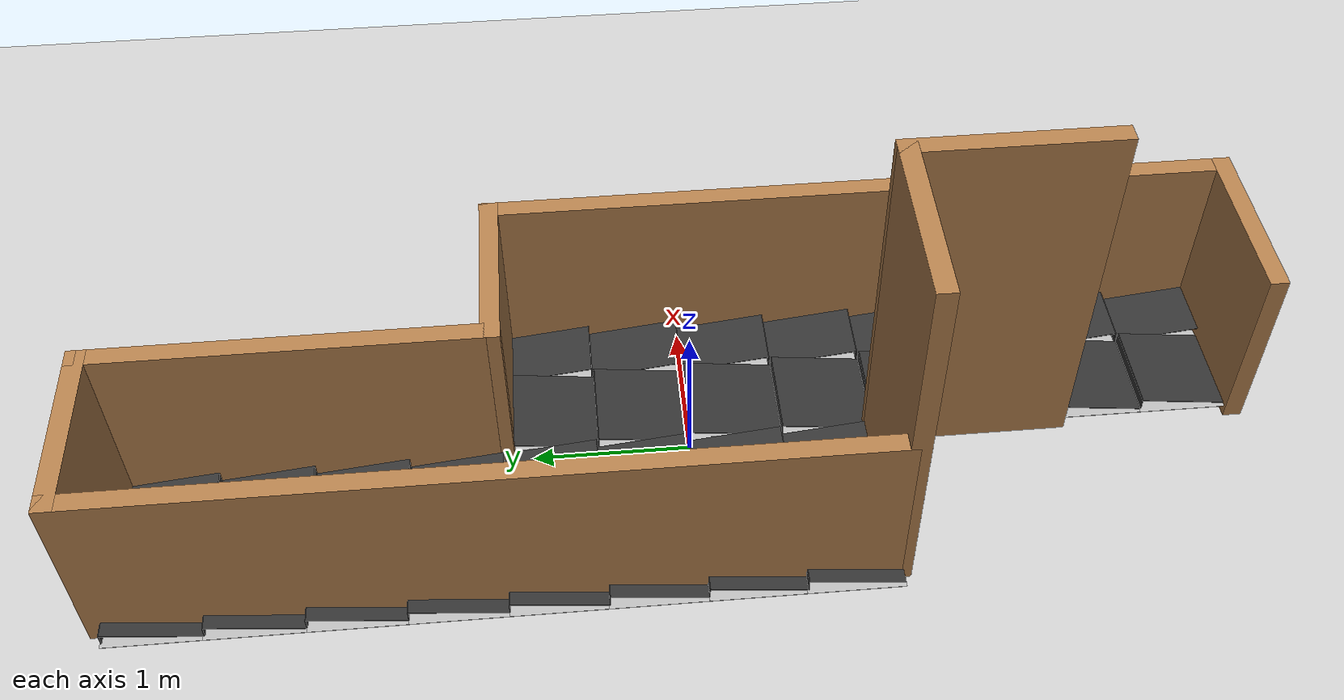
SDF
<sdf version="1.6">
 <world name="default">
  <light name="sun" type="directional">
   <pose>0 0 10 0 -0 0</pose>
   <diffuse>0.8 0.8 0.8 1</diffuse>
   <specular>0.2 0.2 0.2 1</specular>
   <attenuation>
    <range>1000</range>
    <constant>0.9</constant>
    <linear>0.01</linear>
    <quadratic>0.001</quadratic>
   </attenuation>
   <direction>-0.5 0.1 -0.9</direction>
  </light>
  <model name="ground_plane">
   <static>1</static>
   <link name="link">
    <collision name="collision">
     <geometry><plane><normal>0 0 1</normal><size>100 100</size></plane></geometry>
     <surface>
      <contact><collide_bitmask>65535</collide_bitmask></contact>
      <friction><ode><mu>100</mu><mu2>50</mu2></ode></friction>
     </surface>
    </collision>
    <visual name="visual">
     <cast_shadows>0</cast_shadows>
     <geometry><plane><normal>0 0 1</normal><size>100 100</size></plane></geometry>
     <material>
      <script><uri>file://media/materials/scripts/gazebo.material</uri><name>Gazebo/Grey</name></script>
     </material>
    </visual>
   </link>
  </model>
  <gravity>0 0 -9.8</gravity>
  <magnetic_field>6e-06 2.3e-05 -4.2e-05</magnetic_field>
  <atmosphere type="adiabatic"/>
  <physics name="default_physics" default="0" type="ode">
   <max_step_size>0.001</max_step_size>
   <real_time_factor>1</real_time_factor>
   <real_time_update_rate>1000</real_time_update_rate>
  </physics>
  <scene><ambient>0.4 0.4 0.4 1</ambient><background>0.7 0.7 0.7 1</background><shadows>1</shadows></scene>
  <audio><device>default</device></audio>
  <spherical_coordinates>
   <surface_model>EARTH_WGS84</surface_model>
   <latitude_deg>0</latitude_deg>
   <longitude_deg>0</longitude_deg>
   <elevation>0</elevation>
   <heading_deg>0</heading_deg>
  </spherical_coordinates>
  <model name="high_containment_walls">
   <pose>0 0 0 0 0 -1.57</pose>
   <link name="Wall_1">
    <collision name="Wall_1_Collision">
     <geometry><box><size>1.17301 0.12 1.2</size></box></geometry>
     <pose>0 0 0.6 0 -0 0</pose>
    </collision>
    <visual name="Wall_1_Visual">
     <pose>0 0 0.6 0 -0 0</pose>
     <geometry><box><size>1.17301 0.12 1.2</size></box></geometry>
     <material>
      <script><uri>file://media/materials/scripts/gazebo.material</uri><name>Gazebo/Wood</name></script>
      <ambient>1 1 1 1</ambient>
     </material>
     <meta><layer>0</layer></meta>
    </visual>
    <pose>3.56858 0.541186 0 0 -0 1.5708</pose>
   </link>
   <link name="Wall_2">
    <collision name="Wall_2_Collision">
     <geometry><box><size>4.8647 0.12 1.2</size></box></geometry>
     <pose>0 0 0.6 0 -0 0</pose>
    </collision>
    <visual name="Wall_2_Visual">
     <pose>0 0 0.6 0 -0 0</pose>
     <geometry><box><size>4.8647 0.12 1.2</size></box></geometry>
     <material>
      <script><uri>file://media/materials/scripts/gazebo.material</uri><name>Gazebo/Wood</name></script>
      <ambient>1 1 1 1</ambient>
     </material>
     <meta><layer>0</layer></meta>
    </visual>
    <pose>1.19608 1.06769 0 0 -0 3.14159</pose>
   </link>
   <link name="Wall_3">
    <collision name="Wall_3_Collision">
     <geometry><box><size>1.18014 0.12 1.2</size></box></geometry>
     <pose>0 0 0.6 0 -0 0</pose>
    </collision>
    <visual name="Wall_3_Visual">
     <pose>0 0 0.6 0 -0 0</pose>
     <geometry><box><size>1.18014 0.12 1.2</size></box></geometry>
     <material>
      <script><uri>file://media/materials/scripts/gazebo.material</uri><name>Gazebo/Wood</name></script>
      <ambient>1 1 1 1</ambient>
     </material>
     <meta><layer>0</layer></meta>
    </visual>
    <pose>-1.17792 0.537686 0 0 -0 -1.57363</pose>
   </link>
   <link name="Wall_4">
    <collision name="Wall_4_Collision">
     <geometry><box><size>2.50927 0.12 1.2</size></box></geometry>
     <pose>0 0 0.6 0 -0 0</pose>
    </collision>
    <visual name="Wall_4_Visual">
     <pose>0 0 0.6 0 -0 0</pose>
     <geometry><box><size>2.50927 0.12 1.2</size></box></geometry>
     <material>
      <script><uri>file://media/materials/scripts/gazebo.material</uri><name>Gazebo/Wood</name></script>
      <ambient>1 1 1 1</ambient>
     </material>
     <meta><layer>0</layer></meta>
    </visual>
    <pose>-2.37392 0.007186 0 0 -0 -3.14117</pose>
   </link>
   <link name="Wall_5">
    <collision name="Wall_5_Collision">
     <geometry><box><size>1.18871 0.12 1.2</size></box></geometry>
     <pose>0 0 0.6 0 -0 0</pose>
    </collision>
    <visual name="Wall_5_Visual">
     <pose>0 0 0.6 0 -0 0</pose>
     <geometry><box><size>1.18871 0.12 1.2</size></box></geometry>
     <material>
      <script><uri>file://media/materials/scripts/gazebo.material</uri><name>Gazebo/Wood</name></script>
      <ambient>1 1 1 1</ambient>
     </material>
     <meta><layer>0</layer></meta>
    </visual>
    <pose>-3.56842 -0.527814 0 0 -0 -1.5708</pose>
   </link>
   <link name="Wall_6">
    <collision name="Wall_6_Collision">
     <geometry><box><size>4.8628 0.12 1.2</size></box></geometry>
     <pose>0 0 0.6 0 -0 0</pose>
    </collision>
    <visual name="Wall_6_Visual">
     <pose>0 0 0.6 0 -0 0</pose>
     <geometry><box><size>4.8628 0.12 1.2</size></box></geometry>
     <material>
      <script><uri>file://media/materials/scripts/gazebo.material</uri><name>Gazebo/Wood</name></script>
      <ambient>1 1 1 1</ambient>
     </material>
     <meta><layer>0</layer></meta>
    </visual>
    <pose>-1.19692 -1.06481 0 0 -0 -0.001054</pose>
   </link>
   <link name="Wall_8">
    <collision name="Wall_8_Collision">
     <geometry><box><size>1.315 0.12 2.4</size></box></geometry>
     <pose>0 0 1.2 0 -0 0</pose>
    </collision>
    <visual name="Wall_8_Visual">
     <pose>0 0 1.2 0 -0 0</pose>
     <geometry><box><size>1.315 0.12 2.4</size></box></geometry>
     <material>
      <script><uri>file://media/materials/scripts/gazebo.material</uri><name>Gazebo/Wood</name></script>
      <ambient>1 1 1 1</ambient>
     </material>
     <meta><layer>0</layer></meta>
    </visual>
    <pose>1.78308 0.010686 0 0 -0 3.14159</pose>
   </link>
   <link name="Wall_9">
    <collision name="Wall_9_Collision">
     <geometry><box><size>1.19806 0.12 2.4</size></box></geometry>
     <pose>0 0 1.2 0 -0 0</pose>
    </collision>
    <visual name="Wall_9_Visual">
     <pose>0 0 1.2 0 -0 0</pose>
     <geometry><box><size>1.19806 0.12 2.4</size></box></geometry>
     <material>
      <script><uri>file://media/materials/scripts/gazebo.material</uri><name>Gazebo/Wood</name></script>
      <ambient>1 1 1 1</ambient>
     </material>
     <meta><layer>0</layer></meta>
    </visual>
    <pose>1.18008 -0.528314 0 0 -0 -1.581</pose>
   </link>
   <static>1</static>
  </model>
  <model name="frc2016_ramparts">
   <static>1</static>
   <link name="link">
    <visual name="platform">
     <pose>0 0 0.06967 0 -0 0</pose>
     <geometry><box><size>1.27 0.5969 0.003175</size></box></geometry>
    </visual>
    <collision name="platform">
     <pose>0 0 0.06967 0 -0 0</pose>
     <geometry><box><size>1.27 0.5969 0.003175</size></box></geometry>
    </collision>
    <visual name="ramp1">
     <pose>0.30472 0.00588 0.1109 -0.13 0 0</pose>
     <geometry><box><size>0.60957 0.588891 0.00462</size></box></geometry>
     <material><ambient>0.2 0.2 0.2 1</ambient><diffuse>0.2 0.2 0.2 1</diffuse></material>
    </visual>
    <collision name="ramp1">
     <pose>0.30472 0.00588 0.1109 -0.13 0 0</pose>
     <geometry><box><size>0.60957 0.588891 0.00462</size></box></geometry>
    </collision>
    <visual name="up1">
     <pose>0.30472 -0.28806 0.11072 0 -0 0</pose>
     <geometry><box><size>0.60957 0.00462 0.07872</size></box></geometry>
     <material><ambient>0.2 0.2 0.2 1</ambient><diffuse>0.2 0.2 0.2 1</diffuse></material>
    </visual>
    <collision name="up1">
     <pose>0.30472 -0.28806 0.11072 0 -0 0</pose>
     <geometry><box><size>0.60957 0.00462 0.07872</size></box></geometry>
    </collision>
    <visual name="ramp2">
     <pose>-0.30472 -0.00619 0.1109 0.13 -0 0</pose>
     <geometry><box><size>0.60957 0.588891 0.00462</size></box></geometry>
     <material><ambient>0.2 0.2 0.2 1</ambient><diffuse>0.2 0.2 0.2 1</diffuse></material>
    </visual>
    <collision name="ramp2">
     <pose>-0.30472 -0.00619 0.1109 0.13 -0 0</pose>
     <geometry><box><size>0.60957 0.588891 0.00462</size></box></geometry>
    </collision>
    <visual name="up2">
     <pose>-0.30472 0.28806 0.11072 0 -0 0</pose>
     <geometry><box><size>0.60957 0.00462 0.07872</size></box></geometry>
     <material><ambient>0.2 0.2 0.2 1</ambient><diffuse>0.2 0.2 0.2 1</diffuse></material>
    </visual>
    <collision name="up2">
     <pose>-0.30472 0.28806 0.11072 0 -0 0</pose>
     <geometry><box><size>0.60957 0.00462 0.07872</size></box></geometry>
    </collision>
   </link>
   <pose>0.61 -0.295 0 0 -0 0</pose>
  </model>
  <model name="frc2016_ramparts_0">
   <static>1</static>
   <link name="link">
    <visual name="platform">
     <pose>0 0 0.06967 0 -0 0</pose>
     <geometry><box><size>1.27 0.5969 0.003175</size></box></geometry>
    </visual>
    <collision name="platform">
     <pose>0 0 0.06967 0 -0 0</pose>
     <geometry><box><size>1.27 0.5969 0.003175</size></box></geometry>
    </collision>
    <visual name="ramp1">
     <pose>0.30472 0.00588 0.1109 -0.13 0 0</pose>
     <geometry><box><size>0.60957 0.588891 0.00462</size></box></geometry>
     <material><ambient>0.2 0.2 0.2 1</ambient><diffuse>0.2 0.2 0.2 1</diffuse></material>
    </visual>
    <collision name="ramp1">
     <pose>0.30472 0.00588 0.1109 -0.13 0 0</pose>
     <geometry><box><size>0.60957 0.588891 0.00462</size></box></geometry>
    </collision>
    <visual name="up1">
     <pose>0.30472 -0.28806 0.11072 0 -0 0</pose>
     <geometry><box><size>0.60957 0.00462 0.07872</size></box></geometry>
     <material><ambient>0.2 0.2 0.2 1</ambient><diffuse>0.2 0.2 0.2 1</diffuse></material>
    </visual>
    <collision name="up1">
     <pose>0.30472 -0.28806 0.11072 0 -0 0</pose>
     <geometry><box><size>0.60957 0.00462 0.07872</size></box></geometry>
    </collision>
    <visual name="ramp2">
     <pose>-0.30472 -0.00619 0.1109 0.13 -0 0</pose>
     <geometry><box><size>0.60957 0.588891 0.00462</size></box></geometry>
     <material><ambient>0.2 0.2 0.2 1</ambient><diffuse>0.2 0.2 0.2 1</diffuse></material>
    </visual>
    <collision name="ramp2">
     <pose>-0.30472 -0.00619 0.1109 0.13 -0 0</pose>
     <geometry><box><size>0.60957 0.588891 0.00462</size></box></geometry>
    </collision>
    <visual name="up2">
     <pose>-0.30472 0.28806 0.11072 0 -0 0</pose>
     <geometry><box><size>0.60957 0.00462 0.07872</size></box></geometry>
     <material><ambient>0.2 0.2 0.2 1</ambient><diffuse>0.2 0.2 0.2 1</diffuse></material>
    </visual>
    <collision name="up2">
     <pose>-0.30472 0.28806 0.11072 0 -0 0</pose>
     <geometry><box><size>0.60957 0.00462 0.07872</size></box></geometry>
    </collision>
   </link>
   <pose>-0.61 -0.295 0 0 -0 0</pose>
  </model>
  <model name="frc2016_ramparts_1">
   <static>1</static>
   <link name="link">
    <visual name="platform">
     <pose>0 0 0.06967 0 -0 0</pose>
     <geometry><box><size>1.27 0.5969 0.003175</size></box></geometry>
    </visual>
    <collision name="platform">
     <pose>0 0 0.06967 0 -0 0</pose>
     <geometry><box><size>1.27 0.5969 0.003175</size></box></geometry>
    </collision>
    <visual name="ramp1">
     <pose>0.30472 0.00588 0.1109 -0.13 0 0</pose>
     <geometry><box><size>0.60957 0.588891 0.00462</size></box></geometry>
     <material><ambient>0.2 0.2 0.2 1</ambient><diffuse>0.2 0.2 0.2 1</diffuse></material>
    </visual>
    <collision name="ramp1">
     <pose>0.30472 0.00588 0.1109 -0.13 0 0</pose>
     <geometry><box><size>0.60957 0.588891 0.00462</size></box></geometry>
    </collision>
    <visual name="up1">
     <pose>0.30472 -0.28806 0.11072 0 -0 0</pose>
     <geometry><box><size>0.60957 0.00462 0.07872</size></box></geometry>
     <material><ambient>0.2 0.2 0.2 1</ambient><diffuse>0.2 0.2 0.2 1</diffuse></material>
    </visual>
    <collision name="up1">
     <pose>0.30472 -0.28806 0.11072 0 -0 0</pose>
     <geometry><box><size>0.60957 0.00462 0.07872</size></box></geometry>
    </collision>
    <visual name="ramp2">
     <pose>-0.30472 -0.00619 0.1109 0.13 -0 0</pose>
     <geometry><box><size>0.60957 0.588891 0.00462</size></box></geometry>
     <material><ambient>0.2 0.2 0.2 1</ambient><diffuse>0.2 0.2 0.2 1</diffuse></material>
    </visual>
    <collision name="ramp2">
     <pose>-0.30472 -0.00619 0.1109 0.13 -0 0</pose>
     <geometry><box><size>0.60957 0.588891 0.00462</size></box></geometry>
    </collision>
    <visual name="up2">
     <pose>-0.30472 0.28806 0.11072 0 -0 0</pose>
     <geometry><box><size>0.60957 0.00462 0.07872</size></box></geometry>
     <material><ambient>0.2 0.2 0.2 1</ambient><diffuse>0.2 0.2 0.2 1</diffuse></material>
    </visual>
    <collision name="up2">
     <pose>-0.30472 0.28806 0.11072 0 -0 0</pose>
     <geometry><box><size>0.60957 0.00462 0.07872</size></box></geometry>
    </collision>
   </link>
   <pose>0.61 -0.885 0 0 -0 0</pose>
  </model>
  <model name="frc2016_ramparts_2">
   <static>1</static>
   <link name="link">
    <visual name="platform">
     <pose>0 0 0.06967 0 -0 0</pose>
     <geometry><box><size>1.27 0.5969 0.003175</size></box></geometry>
    </visual>
    <collision name="platform">
     <pose>0 0 0.06967 0 -0 0</pose>
     <geometry><box><size>1.27 0.5969 0.003175</size></box></geometry>
    </collision>
    <visual name="ramp1">
     <pose>0.30472 0.00588 0.1109 -0.13 0 0</pose>
     <geometry><box><size>0.60957 0.588891 0.00462</size></box></geometry>
     <material><ambient>0.2 0.2 0.2 1</ambient><diffuse>0.2 0.2 0.2 1</diffuse></material>
    </visual>
    <collision name="ramp1">
     <pose>0.30472 0.00588 0.1109 -0.13 0 0</pose>
     <geometry><box><size>0.60957 0.588891 0.00462</size></box></geometry>
    </collision>
    <visual name="up1">
     <pose>0.30472 -0.28806 0.11072 0 -0 0</pose>
     <geometry><box><size>0.60957 0.00462 0.07872</size></box></geometry>
     <material><ambient>0.2 0.2 0.2 1</ambient><diffuse>0.2 0.2 0.2 1</diffuse></material>
    </visual>
    <collision name="up1">
     <pose>0.30472 -0.28806 0.11072 0 -0 0</pose>
     <geometry><box><size>0.60957 0.00462 0.07872</size></box></geometry>
    </collision>
    <visual name="ramp2">
     <pose>-0.30472 -0.00619 0.1109 0.13 -0 0</pose>
     <geometry><box><size>0.60957 0.588891 0.00462</size></box></geometry>
     <material><ambient>0.2 0.2 0.2 1</ambient><diffuse>0.2 0.2 0.2 1</diffuse></material>
    </visual>
    <collision name="ramp2">
     <pose>-0.30472 -0.00619 0.1109 0.13 -0 0</pose>
     <geometry><box><size>0.60957 0.588891 0.00462</size></box></geometry>
    </collision>
    <visual name="up2">
     <pose>-0.30472 0.28806 0.11072 0 -0 0</pose>
     <geometry><box><size>0.60957 0.00462 0.07872</size></box></geometry>
     <material><ambient>0.2 0.2 0.2 1</ambient><diffuse>0.2 0.2 0.2 1</diffuse></material>
    </visual>
    <collision name="up2">
     <pose>-0.30472 0.28806 0.11072 0 -0 0</pose>
     <geometry><box><size>0.60957 0.00462 0.07872</size></box></geometry>
    </collision>
   </link>
   <pose>-0.61 -0.885 0 0 -0 0</pose>
  </model>
  <model name="frc2016_ramparts_3">
   <static>1</static>
   <link name="link">
    <visual name="platform">
     <pose>0 0 0.06967 0 -0 0</pose>
     <geometry><box><size>1.27 0.5969 0.003175</size></box></geometry>
    </visual>
    <collision name="platform">
     <pose>0 0 0.06967 0 -0 0</pose>
     <geometry><box><size>1.27 0.5969 0.003175</size></box></geometry>
    </collision>
    <visual name="ramp1">
     <pose>0.30472 0.00588 0.1109 -0.13 0 0</pose>
     <geometry><box><size>0.60957 0.588891 0.00462</size></box></geometry>
     <material><ambient>0.2 0.2 0.2 1</ambient><diffuse>0.2 0.2 0.2 1</diffuse></material>
    </visual>
    <collision name="ramp1">
     <pose>0.30472 0.00588 0.1109 -0.13 0 0</pose>
     <geometry><box><size>0.60957 0.588891 0.00462</size></box></geometry>
    </collision>
    <visual name="up1">
     <pose>0.30472 -0.28806 0.11072 0 -0 0</pose>
     <geometry><box><size>0.60957 0.00462 0.07872</size></box></geometry>
     <material><ambient>0.2 0.2 0.2 1</ambient><diffuse>0.2 0.2 0.2 1</diffuse></material>
    </visual>
    <collision name="up1">
     <pose>0.30472 -0.28806 0.11072 0 -0 0</pose>
     <geometry><box><size>0.60957 0.00462 0.07872</size></box></geometry>
    </collision>
    <visual name="ramp2">
     <pose>-0.30472 -0.00619 0.1109 0.13 -0 0</pose>
     <geometry><box><size>0.60957 0.588891 0.00462</size></box></geometry>
     <material><ambient>0.2 0.2 0.2 1</ambient><diffuse>0.2 0.2 0.2 1</diffuse></material>
    </visual>
    <collision name="ramp2">
     <pose>-0.30472 -0.00619 0.1109 0.13 -0 0</pose>
     <geometry><box><size>0.60957 0.588891 0.00462</size></box></geometry>
    </collision>
    <visual name="up2">
     <pose>-0.30472 0.28806 0.11072 0 -0 0</pose>
     <geometry><box><size>0.60957 0.00462 0.07872</size></box></geometry>
     <material><ambient>0.2 0.2 0.2 1</ambient><diffuse>0.2 0.2 0.2 1</diffuse></material>
    </visual>
    <collision name="up2">
     <pose>-0.30472 0.28806 0.11072 0 -0 0</pose>
     <geometry><box><size>0.60957 0.00462 0.07872</size></box></geometry>
    </collision>
   </link>
   <pose>-0.61 0.295 0 0 -0 0</pose>
  </model>
  <model name="frc2016_ramparts_4">
   <static>1</static>
   <link name="link">
    <visual name="platform">
     <pose>0 0 0.06967 0 -0 0</pose>
     <geometry><box><size>1.27 0.5969 0.003175</size></box></geometry>
    </visual>
    <collision name="platform">
     <pose>0 0 0.06967 0 -0 0</pose>
     <geometry><box><size>1.27 0.5969 0.003175</size></box></geometry>
    </collision>
    <visual name="ramp1">
     <pose>0.30472 0.00588 0.1109 -0.13 0 0</pose>
     <geometry><box><size>0.60957 0.588891 0.00462</size></box></geometry>
     <material><ambient>0.2 0.2 0.2 1</ambient><diffuse>0.2 0.2 0.2 1</diffuse></material>
    </visual>
    <collision name="ramp1">
     <pose>0.30472 0.00588 0.1109 -0.13 0 0</pose>
     <geometry><box><size>0.60957 0.588891 0.00462</size></box></geometry>
    </collision>
    <visual name="up1">
     <pose>0.30472 -0.28806 0.11072 0 -0 0</pose>
     <geometry><box><size>0.60957 0.00462 0.07872</size></box></geometry>
     <material><ambient>0.2 0.2 0.2 1</ambient><diffuse>0.2 0.2 0.2 1</diffuse></material>
    </visual>
    <collision name="up1">
     <pose>0.30472 -0.28806 0.11072 0 -0 0</pose>
     <geometry><box><size>0.60957 0.00462 0.07872</size></box></geometry>
    </collision>
    <visual name="ramp2">
     <pose>-0.30472 -0.00619 0.1109 0.13 -0 0</pose>
     <geometry><box><size>0.60957 0.588891 0.00462</size></box></geometry>
     <material><ambient>0.2 0.2 0.2 1</ambient><diffuse>0.2 0.2 0.2 1</diffuse></material>
    </visual>
    <collision name="ramp2">
     <pose>-0.30472 -0.00619 0.1109 0.13 -0 0</pose>
     <geometry><box><size>0.60957 0.588891 0.00462</size></box></geometry>
    </collision>
    <visual name="up2">
     <pose>-0.30472 0.28806 0.11072 0 -0 0</pose>
     <geometry><box><size>0.60957 0.00462 0.07872</size></box></geometry>
     <material><ambient>0.2 0.2 0.2 1</ambient><diffuse>0.2 0.2 0.2 1</diffuse></material>
    </visual>
    <collision name="up2">
     <pose>-0.30472 0.28806 0.11072 0 -0 0</pose>
     <geometry><box><size>0.60957 0.00462 0.07872</size></box></geometry>
    </collision>
   </link>
   <pose>0.61 0.295 0 0 -0 0</pose>
  </model>
  <model name="frc2016_ramparts_5">
   <static>1</static>
   <link name="link">
    <visual name="platform">
     <pose>0 0 0.06967 0 -0 0</pose>
     <geometry><box><size>1.27 0.5969 0.003175</size></box></geometry>
    </visual>
    <collision name="platform">
     <pose>0 0 0.06967 0 -0 0</pose>
     <geometry><box><size>1.27 0.5969 0.003175</size></box></geometry>
    </collision>
    <visual name="ramp1">
     <pose>0.30472 0.00588 0.1109 -0.13 0 0</pose>
     <geometry><box><size>0.60957 0.588891 0.00462</size></box></geometry>
     <material><ambient>0.2 0.2 0.2 1</ambient><diffuse>0.2 0.2 0.2 1</diffuse></material>
    </visual>
    <collision name="ramp1">
     <pose>0.30472 0.00588 0.1109 -0.13 0 0</pose>
     <geometry><box><size>0.60957 0.588891 0.00462</size></box></geometry>
    </collision>
    <visual name="up1">
     <pose>0.30472 -0.28806 0.11072 0 -0 0</pose>
     <geometry><box><size>0.60957 0.00462 0.07872</size></box></geometry>
     <material><ambient>0.2 0.2 0.2 1</ambient><diffuse>0.2 0.2 0.2 1</diffuse></material>
    </visual>
    <collision name="up1">
     <pose>0.30472 -0.28806 0.11072 0 -0 0</pose>
     <geometry><box><size>0.60957 0.00462 0.07872</size></box></geometry>
    </collision>
    <visual name="ramp2">
     <pose>-0.30472 -0.00619 0.1109 0.13 -0 0</pose>
     <geometry><box><size>0.60957 0.588891 0.00462</size></box></geometry>
     <material><ambient>0.2 0.2 0.2 1</ambient><diffuse>0.2 0.2 0.2 1</diffuse></material>
    </visual>
    <collision name="ramp2">
     <pose>-0.30472 -0.00619 0.1109 0.13 -0 0</pose>
     <geometry><box><size>0.60957 0.588891 0.00462</size></box></geometry>
    </collision>
    <visual name="up2">
     <pose>-0.30472 0.28806 0.11072 0 -0 0</pose>
     <geometry><box><size>0.60957 0.00462 0.07872</size></box></geometry>
     <material><ambient>0.2 0.2 0.2 1</ambient><diffuse>0.2 0.2 0.2 1</diffuse></material>
    </visual>
    <collision name="up2">
     <pose>-0.30472 0.28806 0.11072 0 -0 0</pose>
     <geometry><box><size>0.60957 0.00462 0.07872</size></box></geometry>
    </collision>
   </link>
   <pose>0.61 -3.245 0 0 -0 0</pose>
  </model>
  <model name="frc2016_ramparts_6">
   <static>1</static>
   <link name="link">
    <visual name="platform">
     <pose>0 0 0.06967 0 -0 0</pose>
     <geometry><box><size>1.27 0.5969 0.003175</size></box></geometry>
    </visual>
    <collision name="platform">
     <pose>0 0 0.06967 0 -0 0</pose>
     <geometry><box><size>1.27 0.5969 0.003175</size></box></geometry>
    </collision>
    <visual name="ramp1">
     <pose>0.30472 0.00588 0.1109 -0.13 0 0</pose>
     <geometry><box><size>0.60957 0.588891 0.00462</size></box></geometry>
     <material><ambient>0.2 0.2 0.2 1</ambient><diffuse>0.2 0.2 0.2 1</diffuse></material>
    </visual>
    <collision name="ramp1">
     <pose>0.30472 0.00588 0.1109 -0.13 0 0</pose>
     <geometry><box><size>0.60957 0.588891 0.00462</size></box></geometry>
    </collision>
    <visual name="up1">
     <pose>0.30472 -0.28806 0.11072 0 -0 0</pose>
     <geometry><box><size>0.60957 0.00462 0.07872</size></box></geometry>
     <material><ambient>0.2 0.2 0.2 1</ambient><diffuse>0.2 0.2 0.2 1</diffuse></material>
    </visual>
    <collision name="up1">
     <pose>0.30472 -0.28806 0.11072 0 -0 0</pose>
     <geometry><box><size>0.60957 0.00462 0.07872</size></box></geometry>
    </collision>
    <visual name="ramp2">
     <pose>-0.30472 -0.00619 0.1109 0.13 -0 0</pose>
     <geometry><box><size>0.60957 0.588891 0.00462</size></box></geometry>
     <material><ambient>0.2 0.2 0.2 1</ambient><diffuse>0.2 0.2 0.2 1</diffuse></material>
    </visual>
    <collision name="ramp2">
     <pose>-0.30472 -0.00619 0.1109 0.13 -0 0</pose>
     <geometry><box><size>0.60957 0.588891 0.00462</size></box></geometry>
    </collision>
    <visual name="up2">
     <pose>-0.30472 0.28806 0.11072 0 -0 0</pose>
     <geometry><box><size>0.60957 0.00462 0.07872</size></box></geometry>
     <material><ambient>0.2 0.2 0.2 1</ambient><diffuse>0.2 0.2 0.2 1</diffuse></material>
    </visual>
    <collision name="up2">
     <pose>-0.30472 0.28806 0.11072 0 -0 0</pose>
     <geometry><box><size>0.60957 0.00462 0.07872</size></box></geometry>
    </collision>
   </link>
   <pose>0.61 -2.655 0 0 -0 0</pose>
  </model>
  <model name="frc2016_ramparts_7">
   <static>1</static>
   <link name="link">
    <visual name="platform">
     <pose>0 0 0.06967 0 -0 0</pose>
     <geometry><box><size>1.27 0.5969 0.003175</size></box></geometry>
    </visual>
    <collision name="platform">
     <pose>0 0 0.06967 0 -0 0</pose>
     <geometry><box><size>1.27 0.5969 0.003175</size></box></geometry>
    </collision>
    <visual name="ramp1">
     <pose>0.30472 0.00588 0.1109 -0.13 0 0</pose>
     <geometry><box><size>0.60957 0.588891 0.00462</size></box></geometry>
     <material><ambient>0.2 0.2 0.2 1</ambient><diffuse>0.2 0.2 0.2 1</diffuse></material>
    </visual>
    <collision name="ramp1">
     <pose>0.30472 0.00588 0.1109 -0.13 0 0</pose>
     <geometry><box><size>0.60957 0.588891 0.00462</size></box></geometry>
    </collision>
    <visual name="up1">
     <pose>0.30472 -0.28806 0.11072 0 -0 0</pose>
     <geometry><box><size>0.60957 0.00462 0.07872</size></box></geometry>
     <material><ambient>0.2 0.2 0.2 1</ambient><diffuse>0.2 0.2 0.2 1</diffuse></material>
    </visual>
    <collision name="up1">
     <pose>0.30472 -0.28806 0.11072 0 -0 0</pose>
     <geometry><box><size>0.60957 0.00462 0.07872</size></box></geometry>
    </collision>
    <visual name="ramp2">
     <pose>-0.30472 -0.00619 0.1109 0.13 -0 0</pose>
     <geometry><box><size>0.60957 0.588891 0.00462</size></box></geometry>
     <material><ambient>0.2 0.2 0.2 1</ambient><diffuse>0.2 0.2 0.2 1</diffuse></material>
    </visual>
    <collision name="ramp2">
     <pose>-0.30472 -0.00619 0.1109 0.13 -0 0</pose>
     <geometry><box><size>0.60957 0.588891 0.00462</size></box></geometry>
    </collision>
    <visual name="up2">
     <pose>-0.30472 0.28806 0.11072 0 -0 0</pose>
     <geometry><box><size>0.60957 0.00462 0.07872</size></box></geometry>
     <material><ambient>0.2 0.2 0.2 1</ambient><diffuse>0.2 0.2 0.2 1</diffuse></material>
    </visual>
    <collision name="up2">
     <pose>-0.30472 0.28806 0.11072 0 -0 0</pose>
     <geometry><box><size>0.60957 0.00462 0.07872</size></box></geometry>
    </collision>
   </link>
   <pose>0.61 -2.065 0 0 -0 0</pose>
  </model>
  <model name="frc2016_ramparts_8">
   <static>1</static>
   <link name="link">
    <visual name="platform">
     <pose>0 0 0.06967 0 -0 0</pose>
     <geometry><box><size>1.27 0.5969 0.003175</size></box></geometry>
    </visual>
    <collision name="platform">
     <pose>0 0 0.06967 0 -0 0</pose>
     <geometry><box><size>1.27 0.5969 0.003175</size></box></geometry>
    </collision>
    <visual name="ramp1">
     <pose>0.30472 0.00588 0.1109 -0.13 0 0</pose>
     <geometry><box><size>0.60957 0.588891 0.00462</size></box></geometry>
     <material><ambient>0.2 0.2 0.2 1</ambient><diffuse>0.2 0.2 0.2 1</diffuse></material>
    </visual>
    <collision name="ramp1">
     <pose>0.30472 0.00588 0.1109 -0.13 0 0</pose>
     <geometry><box><size>0.60957 0.588891 0.00462</size></box></geometry>
    </collision>
    <visual name="up1">
     <pose>0.30472 -0.28806 0.11072 0 -0 0</pose>
     <geometry><box><size>0.60957 0.00462 0.07872</size></box></geometry>
     <material><ambient>0.2 0.2 0.2 1</ambient><diffuse>0.2 0.2 0.2 1</diffuse></material>
    </visual>
    <collision name="up1">
     <pose>0.30472 -0.28806 0.11072 0 -0 0</pose>
     <geometry><box><size>0.60957 0.00462 0.07872</size></box></geometry>
    </collision>
    <visual name="ramp2">
     <pose>-0.30472 -0.00619 0.1109 0.13 -0 0</pose>
     <geometry><box><size>0.60957 0.588891 0.00462</size></box></geometry>
     <material><ambient>0.2 0.2 0.2 1</ambient><diffuse>0.2 0.2 0.2 1</diffuse></material>
    </visual>
    <collision name="ramp2">
     <pose>-0.30472 -0.00619 0.1109 0.13 -0 0</pose>
     <geometry><box><size>0.60957 0.588891 0.00462</size></box></geometry>
    </collision>
    <visual name="up2">
     <pose>-0.30472 0.28806 0.11072 0 -0 0</pose>
     <geometry><box><size>0.60957 0.00462 0.07872</size></box></geometry>
     <material><ambient>0.2 0.2 0.2 1</ambient><diffuse>0.2 0.2 0.2 1</diffuse></material>
    </visual>
    <collision name="up2">
     <pose>-0.30472 0.28806 0.11072 0 -0 0</pose>
     <geometry><box><size>0.60957 0.00462 0.07872</size></box></geometry>
    </collision>
   </link>
   <pose>0.61 -1.475 0 0 -0 0</pose>
  </model>
  <model name="frc2016_ramparts_9">
   <static>1</static>
   <link name="link">
    <visual name="platform">
     <pose>0 0 0.06967 0 -0 0</pose>
     <geometry><box><size>1.27 0.5969 0.003175</size></box></geometry>
    </visual>
    <collision name="platform">
     <pose>0 0 0.06967 0 -0 0</pose>
     <geometry><box><size>1.27 0.5969 0.003175</size></box></geometry>
    </collision>
    <visual name="ramp1">
     <pose>0.30472 0.00588 0.1109 -0.13 0 0</pose>
     <geometry><box><size>0.60957 0.588891 0.00462</size></box></geometry>
     <material><ambient>0.2 0.2 0.2 1</ambient><diffuse>0.2 0.2 0.2 1</diffuse></material>
    </visual>
    <collision name="ramp1">
     <pose>0.30472 0.00588 0.1109 -0.13 0 0</pose>
     <geometry><box><size>0.60957 0.588891 0.00462</size></box></geometry>
    </collision>
    <visual name="up1">
     <pose>0.30472 -0.28806 0.11072 0 -0 0</pose>
     <geometry><box><size>0.60957 0.00462 0.07872</size></box></geometry>
     <material><ambient>0.2 0.2 0.2 1</ambient><diffuse>0.2 0.2 0.2 1</diffuse></material>
    </visual>
    <collision name="up1">
     <pose>0.30472 -0.28806 0.11072 0 -0 0</pose>
     <geometry><box><size>0.60957 0.00462 0.07872</size></box></geometry>
    </collision>
    <visual name="ramp2">
     <pose>-0.30472 -0.00619 0.1109 0.13 -0 0</pose>
     <geometry><box><size>0.60957 0.588891 0.00462</size></box></geometry>
     <material><ambient>0.2 0.2 0.2 1</ambient><diffuse>0.2 0.2 0.2 1</diffuse></material>
    </visual>
    <collision name="ramp2">
     <pose>-0.30472 -0.00619 0.1109 0.13 -0 0</pose>
     <geometry><box><size>0.60957 0.588891 0.00462</size></box></geometry>
    </collision>
    <visual name="up2">
     <pose>-0.30472 0.28806 0.11072 0 -0 0</pose>
     <geometry><box><size>0.60957 0.00462 0.07872</size></box></geometry>
     <material><ambient>0.2 0.2 0.2 1</ambient><diffuse>0.2 0.2 0.2 1</diffuse></material>
    </visual>
    <collision name="up2">
     <pose>-0.30472 0.28806 0.11072 0 -0 0</pose>
     <geometry><box><size>0.60957 0.00462 0.07872</size></box></geometry>
    </collision>
   </link>
   <pose>0.61 0.885 0 0 -0 0</pose>
  </model>
  <model name="frc2016_ramparts_10">
   <static>1</static>
   <link name="link">
    <visual name="platform">
     <pose>0 0 0.06967 0 -0 0</pose>
     <geometry><box><size>1.27 0.5969 0.003175</size></box></geometry>
    </visual>
    <collision name="platform">
     <pose>0 0 0.06967 0 -0 0</pose>
     <geometry><box><size>1.27 0.5969 0.003175</size></box></geometry>
    </collision>
    <visual name="ramp1">
     <pose>0.30472 0.00588 0.1109 -0.13 0 0</pose>
     <geometry><box><size>0.60957 0.588891 0.00462</size></box></geometry>
     <material><ambient>0.2 0.2 0.2 1</ambient><diffuse>0.2 0.2 0.2 1</diffuse></material>
    </visual>
    <collision name="ramp1">
     <pose>0.30472 0.00588 0.1109 -0.13 0 0</pose>
     <geometry><box><size>0.60957 0.588891 0.00462</size></box></geometry>
    </collision>
    <visual name="up1">
     <pose>0.30472 -0.28806 0.11072 0 -0 0</pose>
     <geometry><box><size>0.60957 0.00462 0.07872</size></box></geometry>
     <material><ambient>0.2 0.2 0.2 1</ambient><diffuse>0.2 0.2 0.2 1</diffuse></material>
    </visual>
    <collision name="up1">
     <pose>0.30472 -0.28806 0.11072 0 -0 0</pose>
     <geometry><box><size>0.60957 0.00462 0.07872</size></box></geometry>
    </collision>
    <visual name="ramp2">
     <pose>-0.30472 -0.00619 0.1109 0.13 -0 0</pose>
     <geometry><box><size>0.60957 0.588891 0.00462</size></box></geometry>
     <material><ambient>0.2 0.2 0.2 1</ambient><diffuse>0.2 0.2 0.2 1</diffuse></material>
    </visual>
    <collision name="ramp2">
     <pose>-0.30472 -0.00619 0.1109 0.13 -0 0</pose>
     <geometry><box><size>0.60957 0.588891 0.00462</size></box></geometry>
    </collision>
    <visual name="up2">
     <pose>-0.30472 0.28806 0.11072 0 -0 0</pose>
     <geometry><box><size>0.60957 0.00462 0.07872</size></box></geometry>
     <material><ambient>0.2 0.2 0.2 1</ambient><diffuse>0.2 0.2 0.2 1</diffuse></material>
    </visual>
    <collision name="up2">
     <pose>-0.30472 0.28806 0.11072 0 -0 0</pose>
     <geometry><box><size>0.60957 0.00462 0.07872</size></box></geometry>
    </collision>
   </link>
   <pose>-0.61 0.885 0 0 -0 0</pose>
  </model>
  <model name="frc2016_ramparts_11">
   <static>1</static>
   <link name="link">
    <visual name="platform">
     <pose>0 0 0.06967 0 -0 0</pose>
     <geometry><box><size>1.27 0.5969 0.003175</size></box></geometry>
    </visual>
    <collision name="platform">
     <pose>0 0 0.06967 0 -0 0</pose>
     <geometry><box><size>1.27 0.5969 0.003175</size></box></geometry>
    </collision>
    <visual name="ramp1">
     <pose>0.30472 0.00588 0.1109 -0.13 0 0</pose>
     <geometry><box><size>0.60957 0.588891 0.00462</size></box></geometry>
     <material><ambient>0.2 0.2 0.2 1</ambient><diffuse>0.2 0.2 0.2 1</diffuse></material>
    </visual>
    <collision name="ramp1">
     <pose>0.30472 0.00588 0.1109 -0.13 0 0</pose>
     <geometry><box><size>0.60957 0.588891 0.00462</size></box></geometry>
    </collision>
    <visual name="up1">
     <pose>0.30472 -0.28806 0.11072 0 -0 0</pose>
     <geometry><box><size>0.60957 0.00462 0.07872</size></box></geometry>
     <material><ambient>0.2 0.2 0.2 1</ambient><diffuse>0.2 0.2 0.2 1</diffuse></material>
    </visual>
    <collision name="up1">
     <pose>0.30472 -0.28806 0.11072 0 -0 0</pose>
     <geometry><box><size>0.60957 0.00462 0.07872</size></box></geometry>
    </collision>
    <visual name="ramp2">
     <pose>-0.30472 -0.00619 0.1109 0.13 -0 0</pose>
     <geometry><box><size>0.60957 0.588891 0.00462</size></box></geometry>
     <material><ambient>0.2 0.2 0.2 1</ambient><diffuse>0.2 0.2 0.2 1</diffuse></material>
    </visual>
    <collision name="ramp2">
     <pose>-0.30472 -0.00619 0.1109 0.13 -0 0</pose>
     <geometry><box><size>0.60957 0.588891 0.00462</size></box></geometry>
    </collision>
    <visual name="up2">
     <pose>-0.30472 0.28806 0.11072 0 -0 0</pose>
     <geometry><box><size>0.60957 0.00462 0.07872</size></box></geometry>
     <material><ambient>0.2 0.2 0.2 1</ambient><diffuse>0.2 0.2 0.2 1</diffuse></material>
    </visual>
    <collision name="up2">
     <pose>-0.30472 0.28806 0.11072 0 -0 0</pose>
     <geometry><box><size>0.60957 0.00462 0.07872</size></box></geometry>
    </collision>
   </link>
   <pose>-0.61 1.475 0 0 -0 0</pose>
  </model>
  <model name="frc2016_ramparts_12">
   <static>1</static>
   <link name="link">
    <visual name="platform">
     <pose>0 0 0.06967 0 -0 0</pose>
     <geometry><box><size>1.27 0.5969 0.003175</size></box></geometry>
    </visual>
    <collision name="platform">
     <pose>0 0 0.06967 0 -0 0</pose>
     <geometry><box><size>1.27 0.5969 0.003175</size></box></geometry>
    </collision>
    <visual name="ramp1">
     <pose>0.30472 0.00588 0.1109 -0.13 0 0</pose>
     <geometry><box><size>0.60957 0.588891 0.00462</size></box></geometry>
     <material><ambient>0.2 0.2 0.2 1</ambient><diffuse>0.2 0.2 0.2 1</diffuse></material>
    </visual>
    <collision name="ramp1">
     <pose>0.30472 0.00588 0.1109 -0.13 0 0</pose>
     <geometry><box><size>0.60957 0.588891 0.00462</size></box></geometry>
    </collision>
    <visual name="up1">
     <pose>0.30472 -0.28806 0.11072 0 -0 0</pose>
     <geometry><box><size>0.60957 0.00462 0.07872</size></box></geometry>
     <material><ambient>0.2 0.2 0.2 1</ambient><diffuse>0.2 0.2 0.2 1</diffuse></material>
    </visual>
    <collision name="up1">
     <pose>0.30472 -0.28806 0.11072 0 -0 0</pose>
     <geometry><box><size>0.60957 0.00462 0.07872</size></box></geometry>
    </collision>
    <visual name="ramp2">
     <pose>-0.30472 -0.00619 0.1109 0.13 -0 0</pose>
     <geometry><box><size>0.60957 0.588891 0.00462</size></box></geometry>
     <material><ambient>0.2 0.2 0.2 1</ambient><diffuse>0.2 0.2 0.2 1</diffuse></material>
    </visual>
    <collision name="ramp2">
     <pose>-0.30472 -0.00619 0.1109 0.13 -0 0</pose>
     <geometry><box><size>0.60957 0.588891 0.00462</size></box></geometry>
    </collision>
    <visual name="up2">
     <pose>-0.30472 0.28806 0.11072 0 -0 0</pose>
     <geometry><box><size>0.60957 0.00462 0.07872</size></box></geometry>
     <material><ambient>0.2 0.2 0.2 1</ambient><diffuse>0.2 0.2 0.2 1</diffuse></material>
    </visual>
    <collision name="up2">
     <pose>-0.30472 0.28806 0.11072 0 -0 0</pose>
     <geometry><box><size>0.60957 0.00462 0.07872</size></box></geometry>
    </collision>
   </link>
   <pose>-0.61 2.065 0 0 -0 0</pose>
  </model>
  <model name="frc2016_ramparts_13">
   <static>1</static>
   <link name="link">
    <visual name="platform">
     <pose>0 0 0.06967 0 -0 0</pose>
     <geometry><box><size>1.27 0.5969 0.003175</size></box></geometry>
    </visual>
    <collision name="platform">
     <pose>0 0 0.06967 0 -0 0</pose>
     <geometry><box><size>1.27 0.5969 0.003175</size></box></geometry>
    </collision>
    <visual name="ramp1">
     <pose>0.30472 0.00588 0.1109 -0.13 0 0</pose>
     <geometry><box><size>0.60957 0.588891 0.00462</size></box></geometry>
     <material><ambient>0.2 0.2 0.2 1</ambient><diffuse>0.2 0.2 0.2 1</diffuse></material>
    </visual>
    <collision name="ramp1">
     <pose>0.30472 0.00588 0.1109 -0.13 0 0</pose>
     <geometry><box><size>0.60957 0.588891 0.00462</size></box></geometry>
    </collision>
    <visual name="up1">
     <pose>0.30472 -0.28806 0.11072 0 -0 0</pose>
     <geometry><box><size>0.60957 0.00462 0.07872</size></box></geometry>
     <material><ambient>0.2 0.2 0.2 1</ambient><diffuse>0.2 0.2 0.2 1</diffuse></material>
    </visual>
    <collision name="up1">
     <pose>0.30472 -0.28806 0.11072 0 -0 0</pose>
     <geometry><box><size>0.60957 0.00462 0.07872</size></box></geometry>
    </collision>
    <visual name="ramp2">
     <pose>-0.30472 -0.00619 0.1109 0.13 -0 0</pose>
     <geometry><box><size>0.60957 0.588891 0.00462</size></box></geometry>
     <material><ambient>0.2 0.2 0.2 1</ambient><diffuse>0.2 0.2 0.2 1</diffuse></material>
    </visual>
    <collision name="ramp2">
     <pose>-0.30472 -0.00619 0.1109 0.13 -0 0</pose>
     <geometry><box><size>0.60957 0.588891 0.00462</size></box></geometry>
    </collision>
    <visual name="up2">
     <pose>-0.30472 0.28806 0.11072 0 -0 0</pose>
     <geometry><box><size>0.60957 0.00462 0.07872</size></box></geometry>
     <material><ambient>0.2 0.2 0.2 1</ambient><diffuse>0.2 0.2 0.2 1</diffuse></material>
    </visual>
    <collision name="up2">
     <pose>-0.30472 0.28806 0.11072 0 -0 0</pose>
     <geometry><box><size>0.60957 0.00462 0.07872</size></box></geometry>
    </collision>
   </link>
   <pose>-0.61 2.655 0 0 -0 0</pose>
  </model>
  <model name="frc2016_ramparts_14">
   <static>1</static>
   <link name="link">
    <visual name="platform">
     <pose>0 0 0.06967 0 -0 0</pose>
     <geometry><box><size>1.27 0.5969 0.003175</size></box></geometry>
    </visual>
    <collision name="platform">
     <pose>0 0 0.06967 0 -0 0</pose>
     <geometry><box><size>1.27 0.5969 0.003175</size></box></geometry>
    </collision>
    <visual name="ramp1">
     <pose>0.30472 0.00588 0.1109 -0.13 0 0</pose>
     <geometry><box><size>0.60957 0.588891 0.00462</size></box></geometry>
     <material><ambient>0.2 0.2 0.2 1</ambient><diffuse>0.2 0.2 0.2 1</diffuse></material>
    </visual>
    <collision name="ramp1">
     <pose>0.30472 0.00588 0.1109 -0.13 0 0</pose>
     <geometry><box><size>0.60957 0.588891 0.00462</size></box></geometry>
    </collision>
    <visual name="up1">
     <pose>0.30472 -0.28806 0.11072 0 -0 0</pose>
     <geometry><box><size>0.60957 0.00462 0.07872</size></box></geometry>
     <material><ambient>0.2 0.2 0.2 1</ambient><diffuse>0.2 0.2 0.2 1</diffuse></material>
    </visual>
    <collision name="up1">
     <pose>0.30472 -0.28806 0.11072 0 -0 0</pose>
     <geometry><box><size>0.60957 0.00462 0.07872</size></box></geometry>
    </collision>
    <visual name="ramp2">
     <pose>-0.30472 -0.00619 0.1109 0.13 -0 0</pose>
     <geometry><box><size>0.60957 0.588891 0.00462</size></box></geometry>
     <material><ambient>0.2 0.2 0.2 1</ambient><diffuse>0.2 0.2 0.2 1</diffuse></material>
    </visual>
    <collision name="ramp2">
     <pose>-0.30472 -0.00619 0.1109 0.13 -0 0</pose>
     <geometry><box><size>0.60957 0.588891 0.00462</size></box></geometry>
    </collision>
    <visual name="up2">
     <pose>-0.30472 0.28806 0.11072 0 -0 0</pose>
     <geometry><box><size>0.60957 0.00462 0.07872</size></box></geometry>
     <material><ambient>0.2 0.2 0.2 1</ambient><diffuse>0.2 0.2 0.2 1</diffuse></material>
    </visual>
    <collision name="up2">
     <pose>-0.30472 0.28806 0.11072 0 -0 0</pose>
     <geometry><box><size>0.60957 0.00462 0.07872</size></box></geometry>
    </collision>
   </link>
   <pose>-0.61 3.245 0 0 -0 0</pose>
  </model>
 </world>
</sdf>
